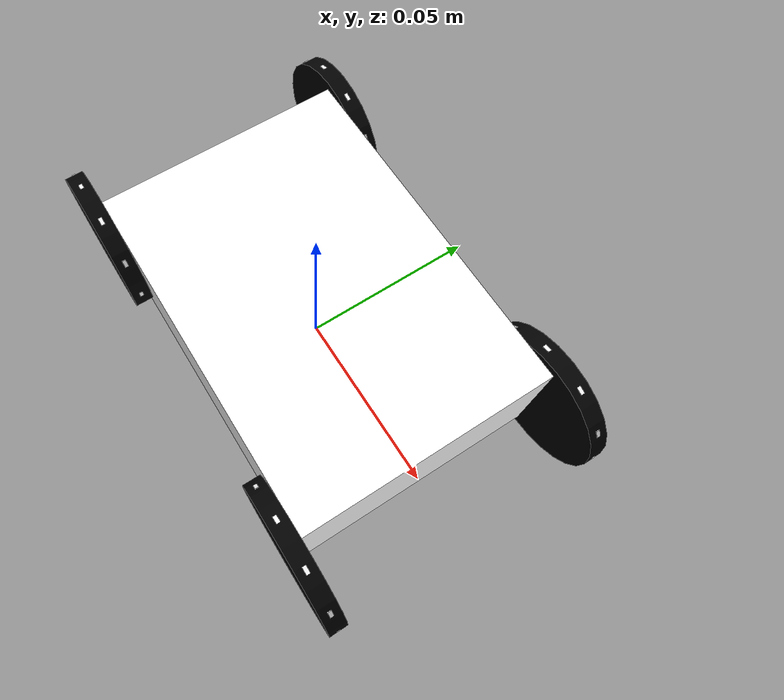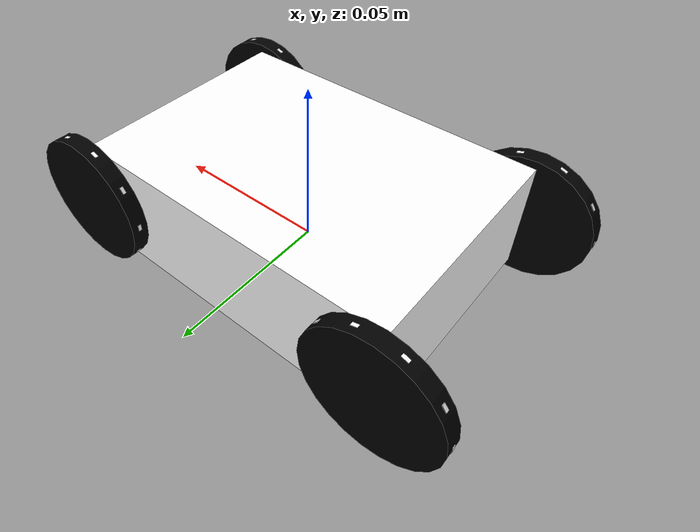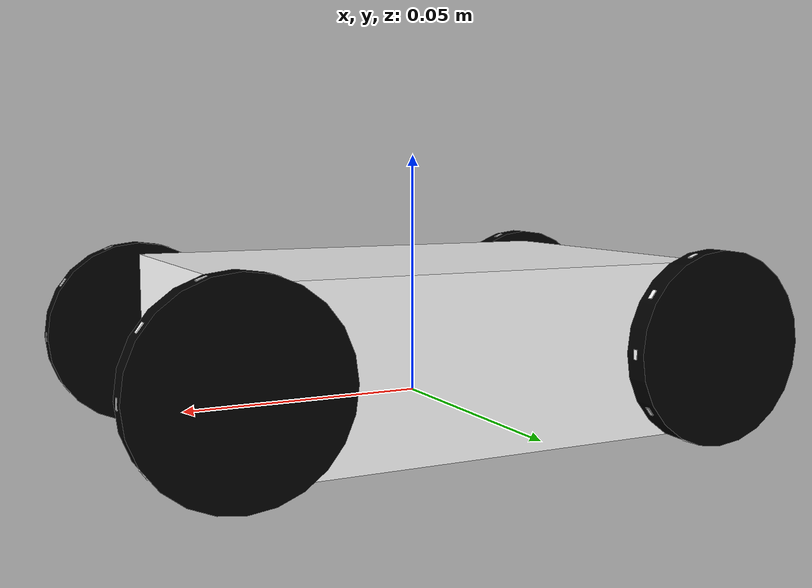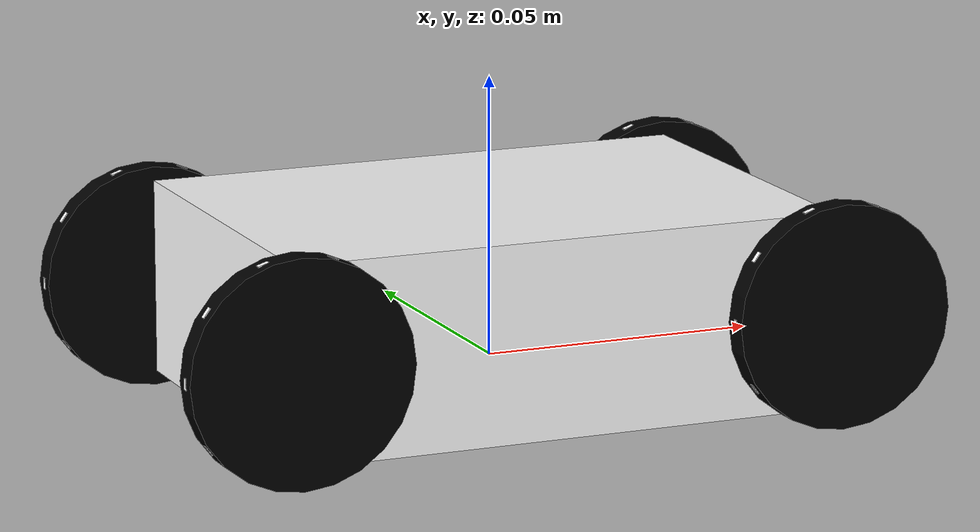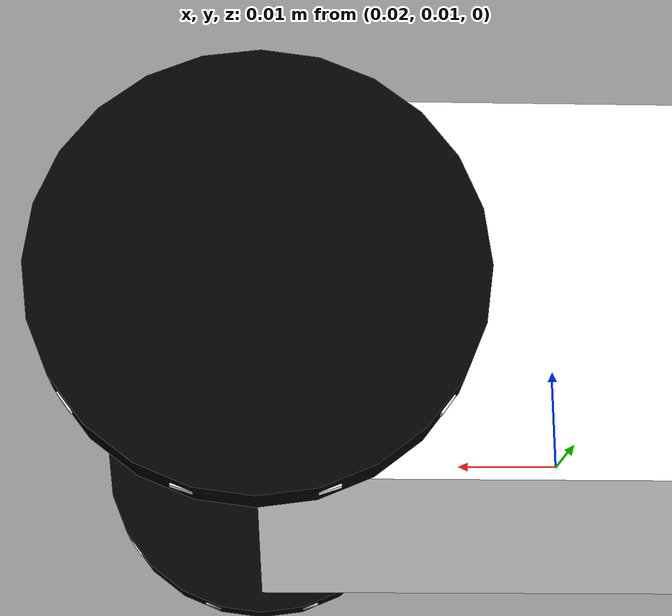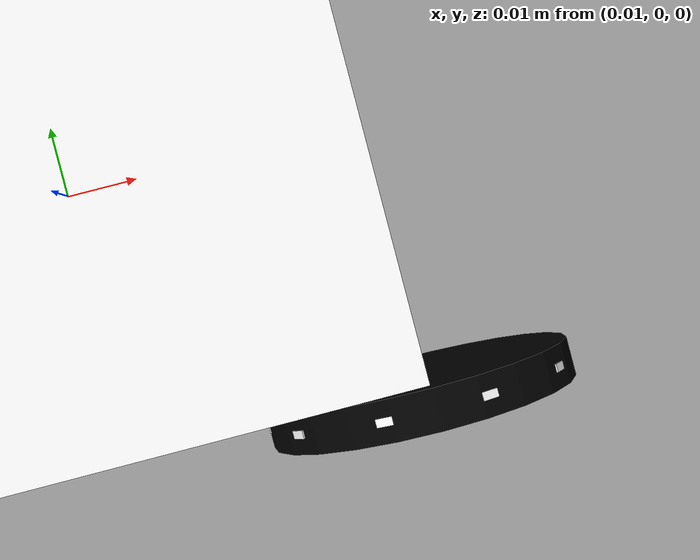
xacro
<?xml version="1.0"?>
<robot xmlns:xacro="http://www.ros.org/wiki/xacro" name="adabot">

    <!--
         Properties for the robot bodies
    -->
    <xacro:property name="PI" value="3.1415926535897931"/>

    <!-- Typical density of plastics -->
    <xacro:property name="mat_density" value="1000.0" />

    <!-- Wheel parameters -->
    <xacro:property name="wh_radius" value="0.02" />
    <xacro:property name="wh_length" value="0.005" />
    <xacro:property name="wh_mass" value="${mat_density*PI*(wh_radius**2)*wh_length}" />

    <!-- Axle parameters -->
    <xacro:property name="ax_axis" value="0 1 0" />

    <!-- Chassis parameters -->
    <xacro:property name="ch_length" value="0.1" />
    <xacro:property name="ch_width" value="0.07" />
    <xacro:property name="ch_height" value="0.035" />
    <xacro:property name="ch_mass" value="${mat_density*ch_length*ch_width*ch_height}" />

    <!-- Weg parameters -->
    <xacro:property name="wg_length" value="${wh_radius*2}" />
    <xacro:property name="wg_width" value="0.001" />
    <xacro:property name="wg_height" value="0.002" />
    <xacro:property name="wg_mass" value="${mat_density*wg_length*wg_width*wg_height}" />

    <!-- Vertical offset so that the robot starts above ground -->
    <xacro:property name="zoffset" value="${wh_radius*1.1/2}" />

    <!--
         Properties for names, colors, and Gazebo
    -->

    <!-- The chassis is the parent of several other links, so we need it's name -->
    <xacro:property name="chassisname" value="base_link" />

    <!-- Import colors defined for Rviz -->
    <xacro:include filename="$(find adabot_description)/urdf/adabot.materials.xacro" />

    <!-- Import tags needed by Gazebo -->
    <xacro:include filename="$(find adabot_description)/urdf/adabot.gazebo.xacro" />

    <!--
         Macro for creating weg geoms
    -->
    <xacro:property name="wg_origin_geom">
        <origin rpy="0 0 0" xyz="0 0 0" />
        <geometry>
            <box size="${wg_length} ${wg_width} ${wg_height}" />
        </geometry>
    </xacro:property>

    <xacro:macro name="weg" params="wheel number parent total">

        <xacro:property name="wg_name" value="wg-${wheel}-${number}" />

        <link name="${wg_name}">
            <visual>
                <xacro:insert_block name="wg_origin_geom" />
                <material name="white" />
            </visual>
            <collision>
                <xacro:insert_block name="wg_origin_geom" />
            </collision>
            <inertial>
                <mass value="${wg_mass}" />
                <inertia
                    ixx="${(1/12)*wg_mass*(wg_width**2 + wg_height**2)}"
                    ixy="0"
                    ixz="0"
                    iyy="${(1/12)*wg_mass*(wg_length**2 + wg_height**2)}"
                    iyz="0"
                    izz="${(1/12)*wg_mass*(wg_length**2 + wg_width**2)}"
                    />
            </inertial>
        </link>

        <joint name="${wg_name}-joint" type="prismatic">
            <parent link="${parent}" />
            <child link="${wg_name}" />
            <origin rpy="0 ${2*PI*(number/total)} 0" xyz="0 0 0" />
            <limit upper="${wg_length*.2}" lower="0" effort="1" velocity="1" />
        </joint>

    </xacro:macro>

    <!--
         Macro for creating wheel geoms
    -->
    <xacro:property name="wh_orig_geom">
        <!-- Cylinders default with their height along the z axis -->
        <origin rpy="1.57075 0 0" xyz="0 0 0" />
        <geometry>
            <cylinder radius="${wh_radius}" length="${wh_length}" />
        </geometry>
    </xacro:property>

    <xacro:macro name="wheel" params="reflect_lr reflect_fb suffix parent">

        <xacro:property name="wh_name" value="wh-${suffix}" />

        <link name="${wh_name}">
            <visual>
                <xacro:insert_block name="wh_orig_geom" />
                <material name="black" />
            </visual>
            <collision>
                <xacro:insert_block name="wh_orig_geom" />
            </collision>
            <inertial>
                <mass value="${wh_mass}" />
                <inertia
                    ixx="${(1/12)*wh_mass*(3*wh_radius**2 + wh_length**2)}"
                    ixy="0"
                    ixz="0"
                    iyy="${(1/12)*wh_mass*(3*wh_radius**2 + wh_length**2)}"
                    iyz="0"
                    izz="${(1/2)*wh_mass*wh_radius**2}"
                    />
            </inertial>
        </link>

        <joint name="ax-${suffix}" type="continuous">
            <parent link="${parent}" />
            <child link="${wh_name}" />
            <origin rpy="0 0 0" xyz="${ch_length/2*reflect_fb} ${(wh_length+ch_width)/2*reflect_lr} ${zoffset}" />
            <axis xyz="${ax_axis}" />
        </joint>

        <xacro:weg wheel="${suffix}" number="1" parent="${wh_name}" total="5" />
        <xacro:weg wheel="${suffix}" number="2" parent="${wh_name}" total="5" />
        <xacro:weg wheel="${suffix}" number="3" parent="${wh_name}" total="5" />
        <xacro:weg wheel="${suffix}" number="4" parent="${wh_name}" total="5" />
        <xacro:weg wheel="${suffix}" number="5" parent="${wh_name}" total="5" />

    </xacro:macro>

    <!--
         Macro for creating the chassis' geom
    -->
    <xacro:property name="ch_orig_geom">
        <origin rpy="0 0 0" xyz="0 0 ${zoffset}" />
        <geometry>
            <box size="${ch_length} ${ch_width} ${ch_height}" />
        </geometry>
    </xacro:property>

    <!--
         The main chassis/body
    -->
    <link name="${chassisname}">
        <visual>
            <xacro:insert_block name="ch_orig_geom" />
            <material name="white" />
        </visual>
        <collision>
            <xacro:insert_block name="ch_orig_geom" />
        </collision>
        <inertial>
            <mass value="${ch_mass}" />
            <inertia
                ixx="${(1/12)*ch_mass*(ch_width**2 + ch_height**2)}"
                ixy="0"
                ixz="0"
                iyy="${(1/12)*ch_mass*(ch_length**2 + ch_height**2)}"
                iyz="0"
                izz="${(1/12)*ch_mass*(ch_length**2 + ch_width**2)}"
                />
        </inertial>
    </link>

    <!--
         Macro calls for creating wheels
    -->
    <xacro:wheel reflect_lr="-1" reflect_fb="1" suffix="front-left" parent="${chassisname}" />
    <xacro:wheel reflect_lr="1" reflect_fb="1" suffix="front-right" parent="${chassisname}" />
    <xacro:wheel reflect_lr="-1" reflect_fb="-1" suffix="back-left" parent="${chassisname}" />
    <xacro:wheel reflect_lr="1" reflect_fb="-1" suffix="back-right" parent="${chassisname}" />

</robot>

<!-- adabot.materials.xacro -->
<robot xmlns:xacro="http://www.ros.org/wiki/xacro" name="adabot">

    <material name="black">
        <color rgba="0.0 0.0 0.0 1.0" />
    </material>

    <material name="blue">
        <color rgba="0.0 0.0 0.8 1.0" />
    </material>

    <material name="green">
        <color rgba="0.0 0.8 0.0 1.0" />
    </material>

    <material name="grey">
        <color rgba="0.2 0.2 0.2 1.0" />
    </material>

    <material name="orange">
        <color rgba="${255/255} ${108/255} ${10/255} 1.0" />
    </material>

    <material name="brown">
        <color rgba="${222/255} ${207/255} ${195/255} 1.0" />
    </material>

    <material name="red">
        <color rgba="0.8 0.0 0.0 1.0" />
    </material>

    <material name="white">
        <color rgba="1.0 1.0 1.0 1.0" />
    </material>

</robot>
